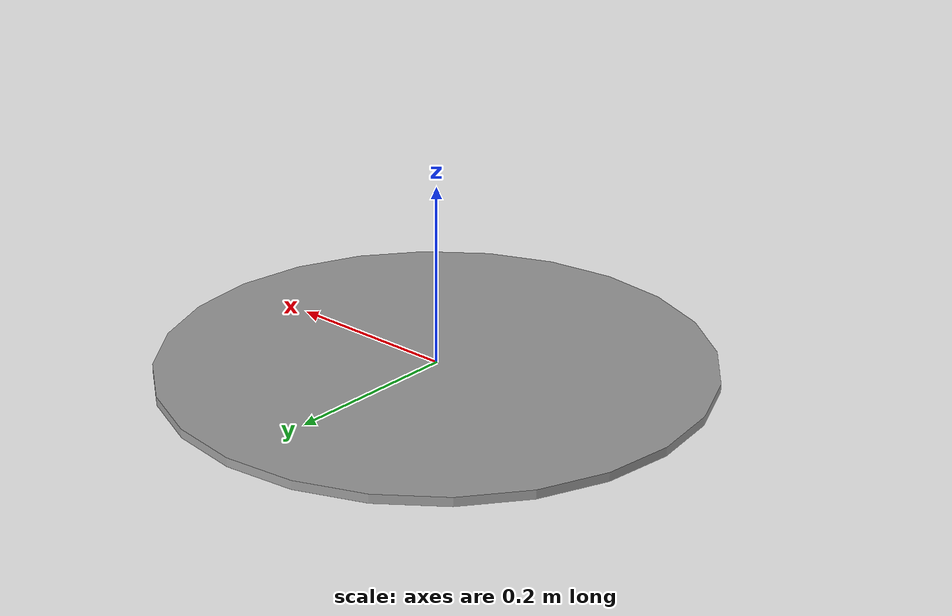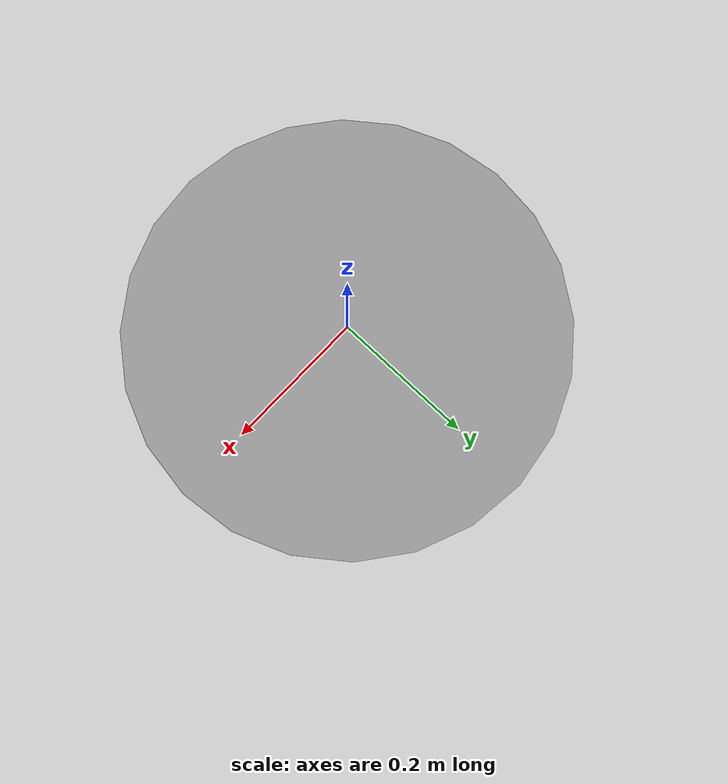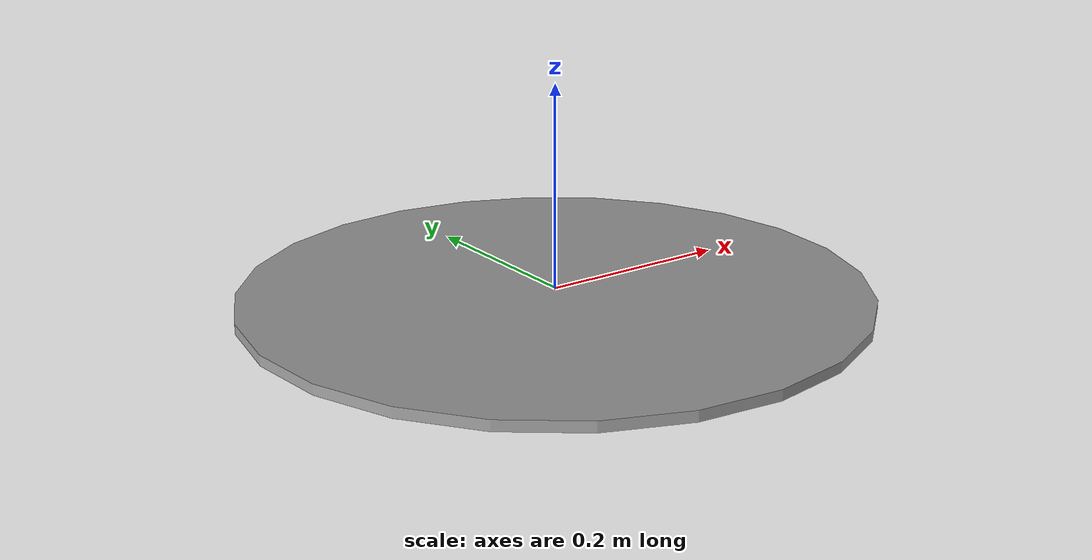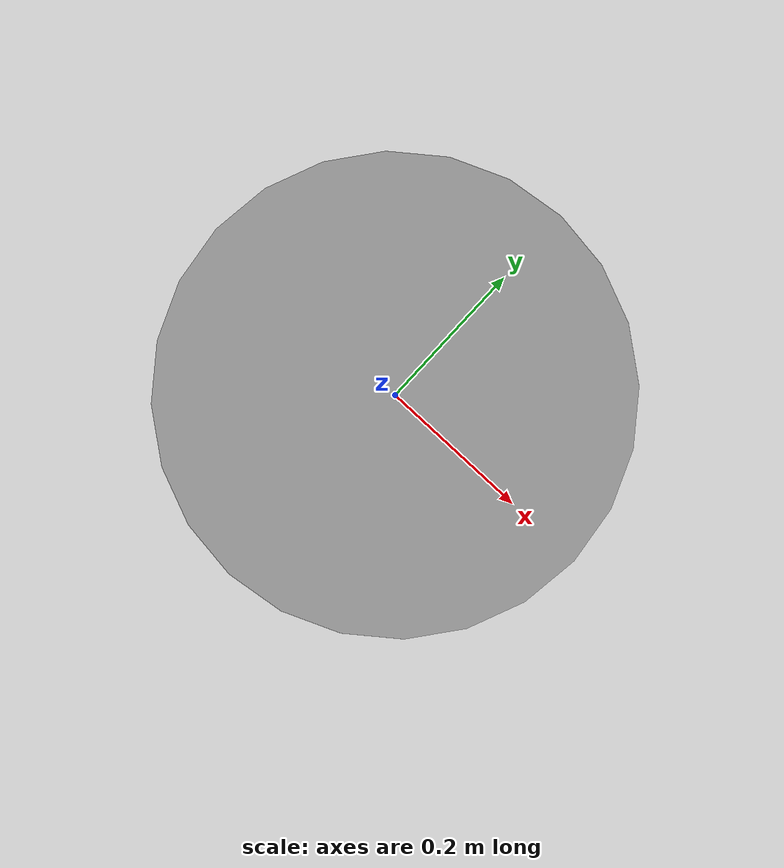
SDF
<?xml version='1.0'?>
<sdf version='1.6'>
  <model name='takeoff_land'>
    <link name='link_0'>
      <inertial>
        <mass> 50</mass>
          <inertia>
            <ixx>1000</ixx>
            <ixy>1000</ixy>
            <ixz>1000</ixz>
            <iyy>1000</iyy>
            <iyz>1000</iyz>
            <izz>1000</izz>
          </inertia>
        <pose frame=''>0 0 0 0 -0 0</pose>
      </inertial>
      <pose frame=''>3e-06 -0 0 0 -0 0</pose>
      <gravity>1</gravity>
      <self_collide>0</self_collide>
      <kinematic>0</kinematic>
      <enable_wind>0</enable_wind>
      <visual name='visual'>
        <pose frame=''>0 0 0 0 -0 0</pose>
        <geometry>
          <cylinder>
            <radius>0.3048</radius>
            <length>0.01</length>
          </cylinder>
        </geometry>
        <material>
          <lighting>1</lighting>
          <script>
            <uri>file://media/materials/scripts/gazebo.material</uri>
            <name>Gazebo/Grey</name>
          </script>
          <shader type='pixel'>
            <normal_map>__default__</normal_map>
          </shader>
          <ambient>0.3 0.3 0.3 1</ambient>
          <diffuse>0.7 0.7 0.7 1</diffuse>
          <specular>0.01 0.01 0.01 1</specular>
          <emissive>0 0 0 1</emissive>
        </material>
        <transparency>0</transparency>
        <cast_shadows>1</cast_shadows>
      </visual>
      <collision name='collision'>
        <laser_retro>0</laser_retro>
        <max_contacts>10</max_contacts>
        <pose frame=''>0 0 0 0 -0 0</pose>
        <geometry>
          <cylinder>
            <radius>0.3048</radius>
            <length>0.0654</length>
          </cylinder>
        </geometry>
        <surface>
          <friction>
            <ode>
              <mu>100</mu>
              <mu2>100</mu2>
              <fdir1>0 0 0</fdir1>
              <slip1>0</slip1>
              <slip2>0</slip2>
            </ode>
            <torsional>
              <coefficient>1</coefficient>
              <patch_radius>0</patch_radius>
              <surface_radius>0</surface_radius>
              <use_patch_radius>1</use_patch_radius>
              <ode>
                <slip>0</slip>
              </ode>
            </torsional>
          </friction>
          <bounce>
            <restitution_coefficient>0</restitution_coefficient>
            <threshold>1e+06</threshold>
          </bounce>
          <contact>
            <collide_without_contact>0</collide_without_contact>
            <collide_without_contact_bitmask>1</collide_without_contact_bitmask>
            <collide_bitmask>1</collide_bitmask>
            <ode>
              <soft_cfm>0</soft_cfm>
              <soft_erp>0.2</soft_erp>
              <kp>1e+13</kp>
              <kd>1</kd>
              <max_vel>0.01</max_vel>
              <min_depth>0</min_depth>
            </ode>
            <bullet>
              <split_impulse>1</split_impulse>
              <split_impulse_penetration_threshold>-0.01</split_impulse_penetration_threshold>
              <soft_cfm>0</soft_cfm>
              <soft_erp>0.2</soft_erp>
              <kp>1e+13</kp>
              <kd>1</kd>
            </bullet>
          </contact>
        </surface>
      </collision>
    </link>
    <static>0</static>
    <allow_auto_disable>1</allow_auto_disable>
  </model>
</sdf>
